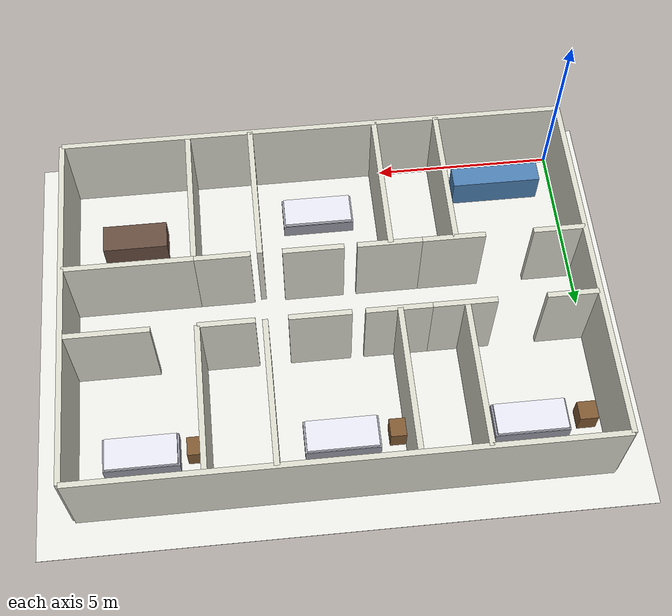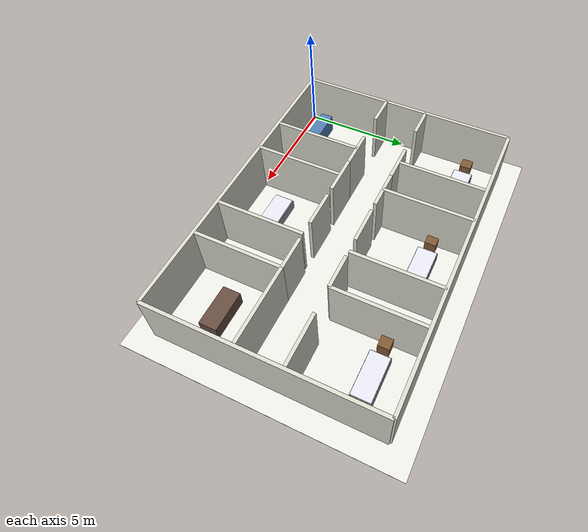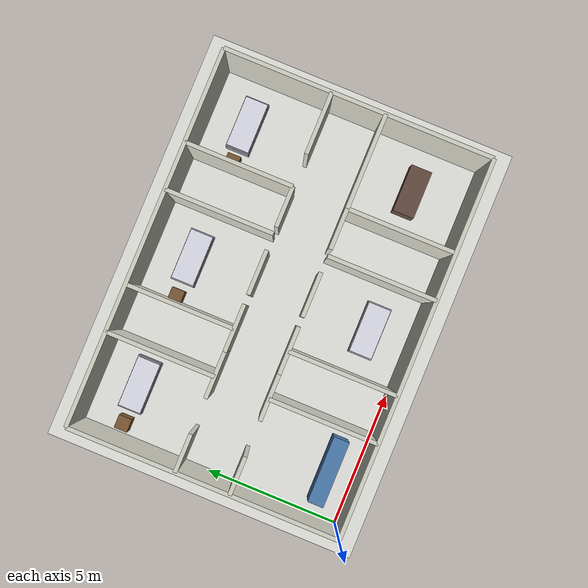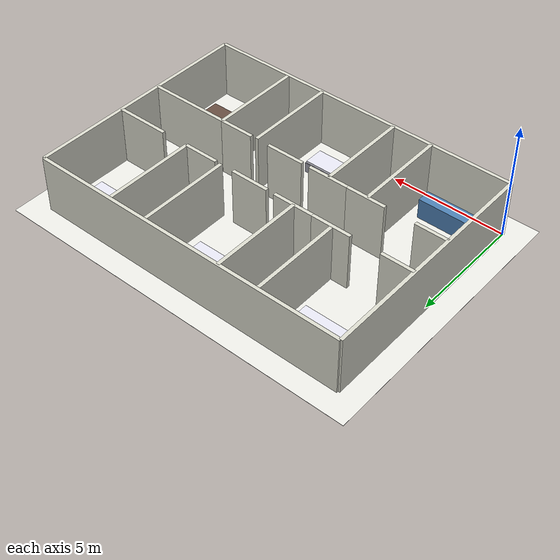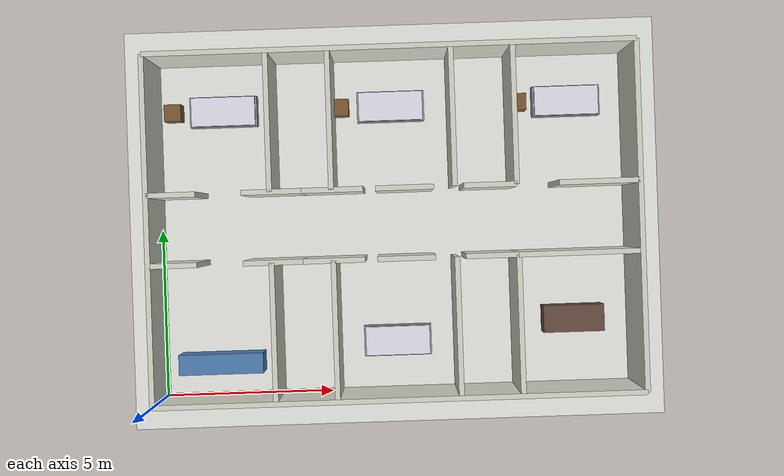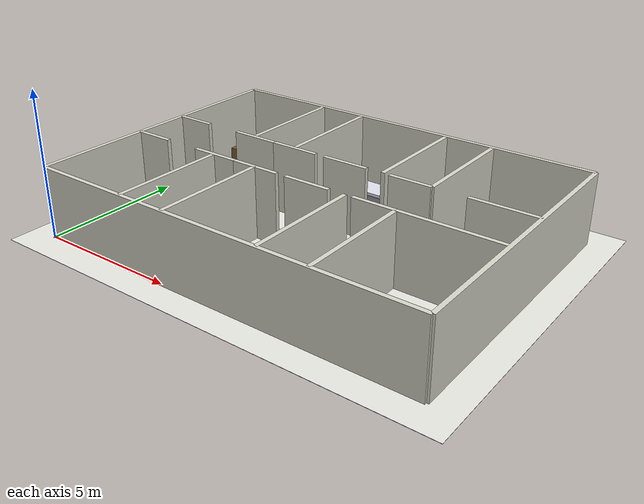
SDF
<?xml version="1.0" ?>
<sdf version="1.9">
  <world name="hospital_ward">

    <!-- Physics -->
    <physics name="1ms" type="ode">
      <max_step_size>0.001</max_step_size>
      <real_time_factor>1.0</real_time_factor>
      <real_time_update_rate>1000</real_time_update_rate>
    </physics>

    <!-- Plugins -->
    <plugin filename="gz-sim-physics-system" name="gz::sim::systems::Physics"/>
    <plugin filename="gz-sim-user-commands-system" name="gz::sim::systems::UserCommands"/>
    <plugin filename="gz-sim-scene-broadcaster-system" name="gz::sim::systems::SceneBroadcaster"/>
    <plugin filename="gz-sim-sensors-system" name="gz::sim::systems::Sensors">
      <render_engine>ogre2</render_engine>
    </plugin>
    <plugin filename="gz-sim-imu-system" name="gz::sim::systems::Imu"/>
    <plugin filename="gz-sim-contact-system" name="gz::sim::systems::Contact"/>

    <!-- Lighting -->
    <light type="directional" name="sun">
      <cast_shadows>true</cast_shadows>
      <pose>0 0 10 0 0 0</pose>
      <diffuse>0.9 0.9 0.88 1</diffuse>
      <specular>0.3 0.3 0.3 1</specular>
      <direction>-0.3 0.1 -0.9</direction>
    </light>
    <light type="point" name="corridor_light_1">
      <pose>3 5 2.4 0 0 0</pose>
      <diffuse>0.8 0.8 0.75 1</diffuse>
      <intensity>0.5</intensity>
      <attenuation><range>10</range><constant>0.5</constant><linear>0.1</linear><quadratic>0.01</quadratic></attenuation>
    </light>
    <light type="point" name="corridor_light_2">
      <pose>10 5 2.4 0 0 0</pose>
      <diffuse>0.8 0.8 0.75 1</diffuse>
      <intensity>0.5</intensity>
      <attenuation><range>10</range><constant>0.5</constant><linear>0.1</linear><quadratic>0.01</quadratic></attenuation>
    </light>

    <gravity>0 0 -9.8</gravity>
    <magnetic_field>6e-06 2.3e-05 -4.2e-05</magnetic_field>
    <atmosphere type="adiabatic"/>

    <scene>
      <ambient>0.6 0.6 0.58 1</ambient>
      <background>0.7 0.75 0.8 1</background>
      <shadows>true</shadows>
    </scene>

    <!-- ========== FLOOR ========== -->
    <!-- Hospital: x=[0,14], y=[0,10] -->
    <model name="hospital_floor"><static>true</static>
      <pose>7.0 5.0 -0.005 0 0 0</pose>
      <link name="link">
        <collision name="col"><geometry><box><size>16.0 12.0 0.01</size></box></geometry>
          <surface><friction><ode><mu>100</mu><mu2>50</mu2></ode></friction></surface>
        </collision>
        <visual name="vis"><geometry><box><size>16.0 12.0 0.01</size></box></geometry>
          <material><ambient>0.92 0.92 0.90 1</ambient><diffuse>0.92 0.92 0.90 1</diffuse></material>
        </visual>
      </link>
    </model>

    <!-- ========== OUTER WALLS ========== -->
    <model name="wall_south"><static>true</static>
      <pose>7.0 0.0 1.25 0 0 0</pose>
      <link name="link">
        <collision name="c"><geometry><box><size>14.0 0.15 2.5</size></box></geometry></collision>
        <visual name="v"><geometry><box><size>14.0 0.15 2.5</size></box></geometry>
          <material><ambient>0.85 0.85 0.80 1</ambient><diffuse>0.85 0.85 0.80 1</diffuse></material></visual>
      </link>
    </model>
    <model name="wall_north"><static>true</static>
      <pose>7.0 10.0 1.25 0 0 0</pose>
      <link name="link">
        <collision name="c"><geometry><box><size>14.0 0.15 2.5</size></box></geometry></collision>
        <visual name="v"><geometry><box><size>14.0 0.15 2.5</size></box></geometry>
          <material><ambient>0.85 0.85 0.80 1</ambient><diffuse>0.85 0.85 0.80 1</diffuse></material></visual>
      </link>
    </model>
    <model name="wall_west"><static>true</static>
      <pose>0.0 5.0 1.25 0 0 0</pose>
      <link name="link">
        <collision name="c"><geometry><box><size>0.15 10.0 2.5</size></box></geometry></collision>
        <visual name="v"><geometry><box><size>0.15 10.0 2.5</size></box></geometry>
          <material><ambient>0.85 0.85 0.80 1</ambient><diffuse>0.85 0.85 0.80 1</diffuse></material></visual>
      </link>
    </model>
    <model name="wall_east"><static>true</static>
      <pose>14.0 5.0 1.25 0 0 0</pose>
      <link name="link">
        <collision name="c"><geometry><box><size>0.15 10.0 2.5</size></box></geometry></collision>
        <visual name="v"><geometry><box><size>0.15 10.0 2.5</size></box></geometry>
          <material><ambient>0.85 0.85 0.80 1</ambient><diffuse>0.85 0.85 0.80 1</diffuse></material></visual>
      </link>
    </model>

    <!-- ========== CORRIDOR WALLS y=4 (south corridor wall) ========== -->
    <!-- Pharmacy door gap: x=1.4 to x=2.6 -->
    <model name="corr_s1"><static>true</static><pose>0.7 4.0 1.25 0 0 0</pose>
      <link name="link">
        <collision name="c"><geometry><box><size>1.4 0.15 2.5</size></box></geometry></collision>
        <visual name="v"><geometry><box><size>1.4 0.15 2.5</size></box></geometry>
          <material><ambient>0.85 0.85 0.80 1</ambient><diffuse>0.85 0.85 0.80 1</diffuse></material></visual>
      </link>
    </model>
    <!-- gap 1.4 to 2.6 (pharmacy door) -->
    <model name="corr_s2"><static>true</static><pose>3.55 4.0 1.25 0 0 0</pose>
      <link name="link">
        <collision name="c"><geometry><box><size>1.7 0.15 2.5</size></box></geometry></collision>
        <visual name="v"><geometry><box><size>1.7 0.15 2.5</size></box></geometry>
          <material><ambient>0.85 0.85 0.80 1</ambient><diffuse>0.85 0.85 0.80 1</diffuse></material></visual>
      </link>
    </model>
    <model name="corr_s3"><static>true</static><pose>5.275 4.0 1.25 0 0 0</pose>
      <link name="link">
        <collision name="c"><geometry><box><size>1.75 0.15 2.5</size></box></geometry></collision>
        <visual name="v"><geometry><box><size>1.75 0.15 2.5</size></box></geometry>
          <material><ambient>0.85 0.85 0.80 1</ambient><diffuse>0.85 0.85 0.80 1</diffuse></material></visual>
      </link>
    </model>
    <!-- gap 5.25 to 6.4 (room 4 door) -->
    <model name="corr_s4"><static>true</static><pose>7.325 4.0 1.25 0 0 0</pose>
      <link name="link">
        <collision name="c"><geometry><box><size>1.65 0.15 2.5</size></box></geometry></collision>
        <visual name="v"><geometry><box><size>1.65 0.15 2.5</size></box></geometry>
          <material><ambient>0.85 0.85 0.80 1</ambient><diffuse>0.85 0.85 0.80 1</diffuse></material></visual>
      </link>
    </model>
    <model name="corr_s5"><static>true</static><pose>9.75 4.0 1.25 0 0 0</pose>
      <link name="link">
        <collision name="c"><geometry><box><size>1.5 0.15 2.5</size></box></geometry></collision>
        <visual name="v"><geometry><box><size>1.5 0.15 2.5</size></box></geometry>
          <material><ambient>0.85 0.85 0.80 1</ambient><diffuse>0.85 0.85 0.80 1</diffuse></material></visual>
      </link>
    </model>
    <model name="corr_s6"><static>true</static><pose>12.25 4.0 1.25 0 0 0</pose>
      <link name="link">
        <collision name="c"><geometry><box><size>3.5 0.15 2.5</size></box></geometry></collision>
        <visual name="v"><geometry><box><size>3.5 0.15 2.5</size></box></geometry>
          <material><ambient>0.85 0.85 0.80 1</ambient><diffuse>0.85 0.85 0.80 1</diffuse></material></visual>
      </link>
    </model>

    <!-- ========== CORRIDOR WALLS y=6 (north corridor wall) ========== -->
    <!-- Room 1 door gap: x=1.4 to x=2.6 -->
    <model name="corr_n1"><static>true</static><pose>0.7 6.0 1.25 0 0 0</pose>
      <link name="link">
        <collision name="c"><geometry><box><size>1.4 0.15 2.5</size></box></geometry></collision>
        <visual name="v"><geometry><box><size>1.4 0.15 2.5</size></box></geometry>
          <material><ambient>0.85 0.85 0.80 1</ambient><diffuse>0.85 0.85 0.80 1</diffuse></material></visual>
      </link>
    </model>
    <!-- gap 1.4 to 2.6 (room 1 door) -->
    <model name="corr_n2"><static>true</static><pose>3.55 6.0 1.25 0 0 0</pose>
      <link name="link">
        <collision name="c"><geometry><box><size>1.7 0.15 2.5</size></box></geometry></collision>
        <visual name="v"><geometry><box><size>1.7 0.15 2.5</size></box></geometry>
          <material><ambient>0.85 0.85 0.80 1</ambient><diffuse>0.85 0.85 0.80 1</diffuse></material></visual>
      </link>
    </model>
    <model name="corr_n3"><static>true</static><pose>5.275 6.0 1.25 0 0 0</pose>
      <link name="link">
        <collision name="c"><geometry><box><size>1.75 0.15 2.5</size></box></geometry></collision>
        <visual name="v"><geometry><box><size>1.75 0.15 2.5</size></box></geometry>
          <material><ambient>0.85 0.85 0.80 1</ambient><diffuse>0.85 0.85 0.80 1</diffuse></material></visual>
      </link>
    </model>
    <!-- gap 5.25 to 6.4 (room 2 door) -->
    <model name="corr_n4"><static>true</static><pose>7.325 6.0 1.25 0 0 0</pose>
      <link name="link">
        <collision name="c"><geometry><box><size>1.65 0.15 2.5</size></box></geometry></collision>
        <visual name="v"><geometry><box><size>1.65 0.15 2.5</size></box></geometry>
          <material><ambient>0.85 0.85 0.80 1</ambient><diffuse>0.85 0.85 0.80 1</diffuse></material></visual>
      </link>
    </model>
    <model name="corr_n5"><static>true</static><pose>9.75 6.0 1.25 0 0 0</pose>
      <link name="link">
        <collision name="c"><geometry><box><size>1.5 0.15 2.5</size></box></geometry></collision>
        <visual name="v"><geometry><box><size>1.5 0.15 2.5</size></box></geometry>
          <material><ambient>0.85 0.85 0.80 1</ambient><diffuse>0.85 0.85 0.80 1</diffuse></material></visual>
      </link>
    </model>
    <!-- gap 10.5 to 11.7 (room 3 door) -->
    <model name="corr_n6"><static>true</static><pose>12.85 6.0 1.25 0 0 0</pose>
      <link name="link">
        <collision name="c"><geometry><box><size>2.3 0.15 2.5</size></box></geometry></collision>
        <visual name="v"><geometry><box><size>2.3 0.15 2.5</size></box></geometry>
          <material><ambient>0.85 0.85 0.80 1</ambient><diffuse>0.85 0.85 0.80 1</diffuse></material></visual>
      </link>
    </model>

    <!-- ========== ROOM DIVIDERS ========== -->
    <!-- Upper rooms dividers -->
    <model name="div_u1"><static>true</static><pose>3.5 8.0 1.25 0 0 0</pose>
      <link name="link">
        <collision name="c"><geometry><box><size>0.15 4.0 2.5</size></box></geometry></collision>
        <visual name="v"><geometry><box><size>0.15 4.0 2.5</size></box></geometry>
          <material><ambient>0.85 0.85 0.80 1</ambient><diffuse>0.85 0.85 0.80 1</diffuse></material></visual>
      </link>
    </model>
    <model name="div_u2"><static>true</static><pose>5.25 8.0 1.25 0 0 0</pose>
      <link name="link">
        <collision name="c"><geometry><box><size>0.15 4.0 2.5</size></box></geometry></collision>
        <visual name="v"><geometry><box><size>0.15 4.0 2.5</size></box></geometry>
          <material><ambient>0.85 0.85 0.80 1</ambient><diffuse>0.85 0.85 0.80 1</diffuse></material></visual>
      </link>
    </model>
    <model name="div_u3"><static>true</static><pose>8.75 8.0 1.25 0 0 0</pose>
      <link name="link">
        <collision name="c"><geometry><box><size>0.15 4.0 2.5</size></box></geometry></collision>
        <visual name="v"><geometry><box><size>0.15 4.0 2.5</size></box></geometry>
          <material><ambient>0.85 0.85 0.80 1</ambient><diffuse>0.85 0.85 0.80 1</diffuse></material></visual>
      </link>
    </model>
    <model name="div_u4"><static>true</static><pose>10.5 8.0 1.25 0 0 0</pose>
      <link name="link">
        <collision name="c"><geometry><box><size>0.15 4.0 2.5</size></box></geometry></collision>
        <visual name="v"><geometry><box><size>0.15 4.0 2.5</size></box></geometry>
          <material><ambient>0.85 0.85 0.80 1</ambient><diffuse>0.85 0.85 0.80 1</diffuse></material></visual>
      </link>
    </model>

    <!-- Lower rooms dividers -->
    <model name="div_l1"><static>true</static><pose>3.5 2.0 1.25 0 0 0</pose>
      <link name="link">
        <collision name="c"><geometry><box><size>0.15 4.0 2.5</size></box></geometry></collision>
        <visual name="v"><geometry><box><size>0.15 4.0 2.5</size></box></geometry>
          <material><ambient>0.85 0.85 0.80 1</ambient><diffuse>0.85 0.85 0.80 1</diffuse></material></visual>
      </link>
    </model>
    <model name="div_l2"><static>true</static><pose>5.25 2.0 1.25 0 0 0</pose>
      <link name="link">
        <collision name="c"><geometry><box><size>0.15 4.0 2.5</size></box></geometry></collision>
        <visual name="v"><geometry><box><size>0.15 4.0 2.5</size></box></geometry>
          <material><ambient>0.85 0.85 0.80 1</ambient><diffuse>0.85 0.85 0.80 1</diffuse></material></visual>
      </link>
    </model>
    <model name="div_l3"><static>true</static><pose>8.75 2.0 1.25 0 0 0</pose>
      <link name="link">
        <collision name="c"><geometry><box><size>0.15 4.0 2.5</size></box></geometry></collision>
        <visual name="v"><geometry><box><size>0.15 4.0 2.5</size></box></geometry>
          <material><ambient>0.85 0.85 0.80 1</ambient><diffuse>0.85 0.85 0.80 1</diffuse></material></visual>
      </link>
    </model>
    <model name="div_l4"><static>true</static><pose>10.5 2.0 1.25 0 0 0</pose>
      <link name="link">
        <collision name="c"><geometry><box><size>0.15 4.0 2.5</size></box></geometry></collision>
        <visual name="v"><geometry><box><size>0.15 4.0 2.5</size></box></geometry>
          <material><ambient>0.85 0.85 0.80 1</ambient><diffuse>0.85 0.85 0.80 1</diffuse></material></visual>
      </link>
    </model>

    <!-- ========== FURNITURE ========== -->
    <!-- Bed 1 (Room 1, upper-left) -->
    <model name="bed_01"><static>true</static><pose>2.0 8.5 0 0 0 0</pose>
      <link name="frame"><pose>0 0 0.225 0 0 0</pose>
        <collision name="c"><geometry><box><size>2.0 0.9 0.45</size></box></geometry></collision>
        <visual name="v"><geometry><box><size>2.0 0.9 0.45</size></box></geometry>
          <material><ambient>0.6 0.6 0.65 1</ambient><diffuse>0.6 0.6 0.65 1</diffuse></material></visual>
      </link>
      <link name="mattress"><pose>0 0 0.5 0 0 0</pose>
        <collision name="c"><geometry><box><size>1.9 0.85 0.1</size></box></geometry></collision>
        <visual name="v"><geometry><box><size>1.9 0.85 0.1</size></box></geometry>
          <material><ambient>0.9 0.9 0.95 1</ambient><diffuse>0.9 0.9 0.95 1</diffuse></material></visual>
      </link>
    </model>
    <!-- Bed 2 (Room 2, upper-center) -->
    <model name="bed_02"><static>true</static><pose>7.0 8.5 0 0 0 0</pose>
      <link name="frame"><pose>0 0 0.225 0 0 0</pose>
        <collision name="c"><geometry><box><size>2.0 0.9 0.45</size></box></geometry></collision>
        <visual name="v"><geometry><box><size>2.0 0.9 0.45</size></box></geometry>
          <material><ambient>0.6 0.6 0.65 1</ambient><diffuse>0.6 0.6 0.65 1</diffuse></material></visual>
      </link>
      <link name="mattress"><pose>0 0 0.5 0 0 0</pose>
        <collision name="c"><geometry><box><size>1.9 0.85 0.1</size></box></geometry></collision>
        <visual name="v"><geometry><box><size>1.9 0.85 0.1</size></box></geometry>
          <material><ambient>0.9 0.9 0.95 1</ambient><diffuse>0.9 0.9 0.95 1</diffuse></material></visual>
      </link>
    </model>
    <!-- Bed 3 (Room 3, upper-right) -->
    <model name="bed_03"><static>true</static><pose>12.25 8.5 0 0 0 0</pose>
      <link name="frame"><pose>0 0 0.225 0 0 0</pose>
        <collision name="c"><geometry><box><size>2.0 0.9 0.45</size></box></geometry></collision>
        <visual name="v"><geometry><box><size>2.0 0.9 0.45</size></box></geometry>
          <material><ambient>0.6 0.6 0.65 1</ambient><diffuse>0.6 0.6 0.65 1</diffuse></material></visual>
      </link>
      <link name="mattress"><pose>0 0 0.5 0 0 0</pose>
        <collision name="c"><geometry><box><size>1.9 0.85 0.1</size></box></geometry></collision>
        <visual name="v"><geometry><box><size>1.9 0.85 0.1</size></box></geometry>
          <material><ambient>0.9 0.9 0.95 1</ambient><diffuse>0.9 0.9 0.95 1</diffuse></material></visual>
      </link>
    </model>
    <!-- Bed 4 (Room 4, lower-center) -->
    <model name="bed_04"><static>true</static><pose>7.0 1.5 0 0 0 0</pose>
      <link name="frame"><pose>0 0 0.225 0 0 0</pose>
        <collision name="c"><geometry><box><size>2.0 0.9 0.45</size></box></geometry></collision>
        <visual name="v"><geometry><box><size>2.0 0.9 0.45</size></box></geometry>
          <material><ambient>0.6 0.6 0.65 1</ambient><diffuse>0.6 0.6 0.65 1</diffuse></material></visual>
      </link>
      <link name="mattress"><pose>0 0 0.5 0 0 0</pose>
        <collision name="c"><geometry><box><size>1.9 0.85 0.1</size></box></geometry></collision>
        <visual name="v"><geometry><box><size>1.9 0.85 0.1</size></box></geometry>
          <material><ambient>0.9 0.9 0.95 1</ambient><diffuse>0.9 0.9 0.95 1</diffuse></material></visual>
      </link>
    </model>

    <!-- Pharmacy counter -->
    <model name="pharmacy_counter"><static>true</static><pose>1.75 1.0 0.45 0 0 0</pose>
      <link name="link">
        <collision name="c"><geometry><box><size>2.5 0.6 0.9</size></box></geometry></collision>
        <visual name="v"><geometry><box><size>2.5 0.6 0.9</size></box></geometry>
          <material><ambient>0.3 0.5 0.7 1</ambient><diffuse>0.3 0.5 0.7 1</diffuse></material></visual>
      </link>
    </model>

    <!-- Nurse desk -->
    <model name="nurse_desk"><static>true</static><pose>12.25 2.0 0.35 0 0 0</pose>
      <link name="link">
        <collision name="c"><geometry><box><size>1.8 0.8 0.7</size></box></geometry></collision>
        <visual name="v"><geometry><box><size>1.8 0.8 0.7</size></box></geometry>
          <material><ambient>0.4 0.3 0.25 1</ambient><diffuse>0.4 0.3 0.25 1</diffuse></material></visual>
      </link>
    </model>

    <!-- Bedside tables -->
    <model name="table_01"><static>true</static><pose>0.5 8.5 0.3 0 0 0</pose>
      <link name="link">
        <collision name="c"><geometry><box><size>0.5 0.5 0.6</size></box></geometry></collision>
        <visual name="v"><geometry><box><size>0.5 0.5 0.6</size></box></geometry>
          <material><ambient>0.5 0.35 0.2 1</ambient><diffuse>0.5 0.35 0.2 1</diffuse></material></visual>
      </link>
    </model>
    <model name="table_02"><static>true</static><pose>5.5 8.5 0.3 0 0 0</pose>
      <link name="link">
        <collision name="c"><geometry><box><size>0.5 0.5 0.6</size></box></geometry></collision>
        <visual name="v"><geometry><box><size>0.5 0.5 0.6</size></box></geometry>
          <material><ambient>0.5 0.35 0.2 1</ambient><diffuse>0.5 0.35 0.2 1</diffuse></material></visual>
      </link>
    </model>
    <model name="table_03"><static>true</static><pose>10.8 8.5 0.3 0 0 0</pose>
      <link name="link">
        <collision name="c"><geometry><box><size>0.5 0.5 0.6</size></box></geometry></collision>
        <visual name="v"><geometry><box><size>0.5 0.5 0.6</size></box></geometry>
          <material><ambient>0.5 0.35 0.2 1</ambient><diffuse>0.5 0.35 0.2 1</diffuse></material></visual>
      </link>
    </model>

  </world>
</sdf>
